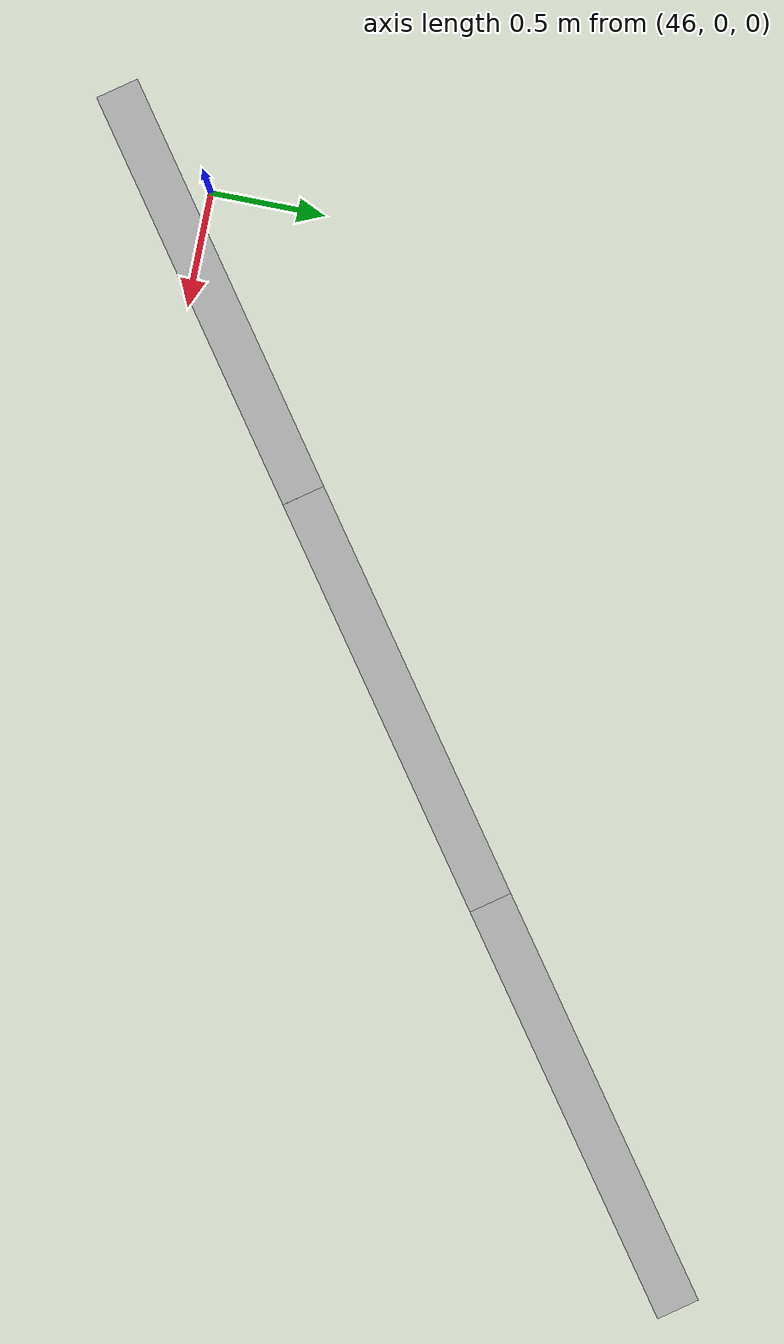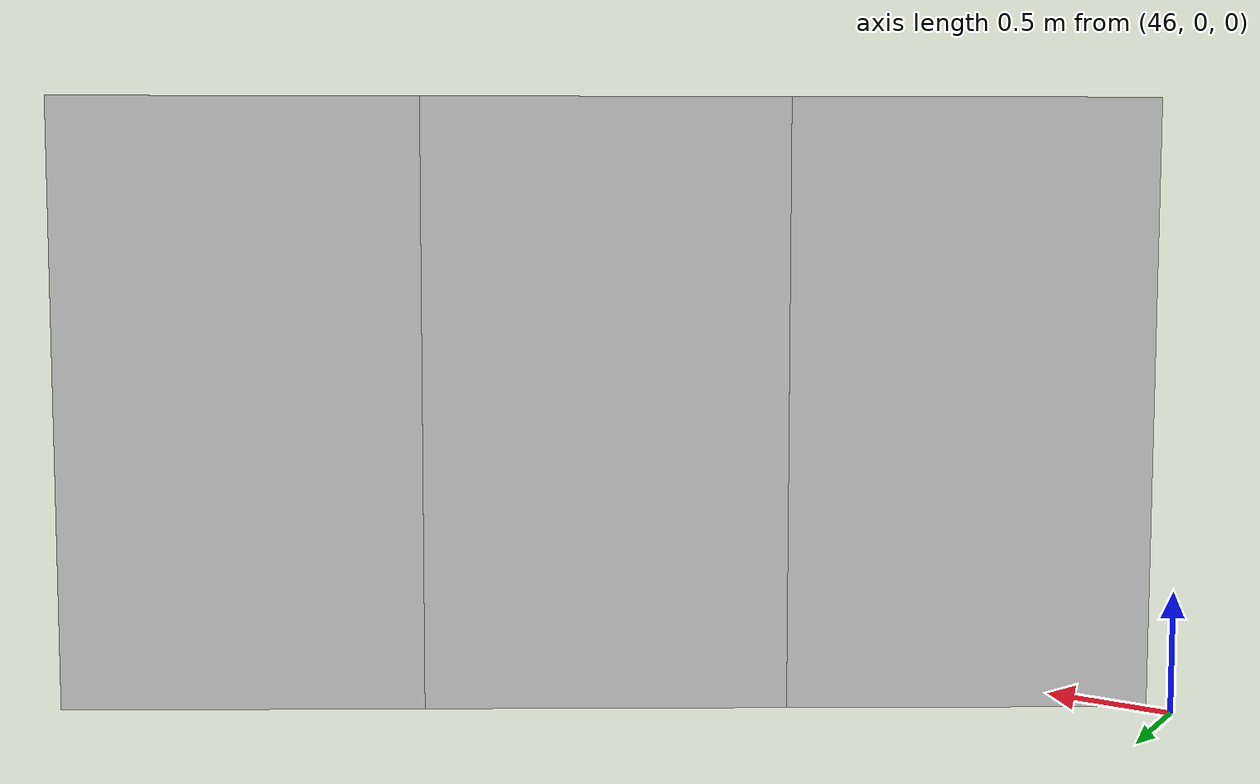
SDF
<?xml version="1.0" ?>
<sdf version="1.6">
  <model name="sps_3607">
    <pose frame="">0 0 0 0 -0 0</pose>
    <static>1</static>
    <self_collide>0</self_collide>
    <allow_auto_disable>0</allow_auto_disable>
    <link name="Wall4062">
      <kinematic>0</kinematic>
      <gravity>1</gravity>
      <self_collide>0</self_collide>
      <collision name="collision">
        <geometry>
          <box>
            <size>1.49633 0.15 2.5</size>
          </box>
        </geometry>
        <pose frame="">0 0 0 0 -0 0</pose>
      </collision>
      <visual name="visual">
        <geometry>
          <box>
            <size>1.49633 0.15 2.5</size>
          </box>
        </geometry>
        <pose frame="">0 0 0 0 -0 0</pose>
        <cast_shadows>1</cast_shadows>
        <transparency>0.0</transparency>
      </visual>
      <pose frame="">46.7562 0.332595 1.25 0 -0 0.629828</pose>
    </link>
    <link name="Wall4063">
      <kinematic>0</kinematic>
      <gravity>1</gravity>
      <self_collide>0</self_collide>
      <collision name="collision">
        <geometry>
          <box>
            <size>1.49668 0.15 2.5</size>
          </box>
        </geometry>
        <pose frame="">0 0 0 0 -0 0</pose>
      </collision>
      <visual name="visual">
        <geometry>
          <box>
            <size>1.49668 0.15 2.5</size>
          </box>
        </geometry>
        <pose frame="">0 0 0 0 -0 0</pose>
        <cast_shadows>1</cast_shadows>
        <transparency>0.0</transparency>
      </visual>
      <pose frame="">47.9649 1.21507 1.25 0 -0 0.631528</pose>
    </link>
    <link name="Wall4064">
      <kinematic>0</kinematic>
      <gravity>1</gravity>
      <self_collide>0</self_collide>
      <collision name="collision">
        <geometry>
          <box>
            <size>1.49663 0.15 2.5</size>
          </box>
        </geometry>
        <pose frame="">0 0 0 0 -0 0</pose>
      </collision>
      <visual name="visual">
        <geometry>
          <box>
            <size>1.49663 0.15 2.5</size>
          </box>
        </geometry>
        <pose frame="">0 0 0 0 -0 0</pose>
        <cast_shadows>1</cast_shadows>
        <transparency>0.0</transparency>
      </visual>
      <pose frame="">49.1722 2.09959 1.25 0 -0 0.633069</pose>
    </link>
  </model>
</sdf>
